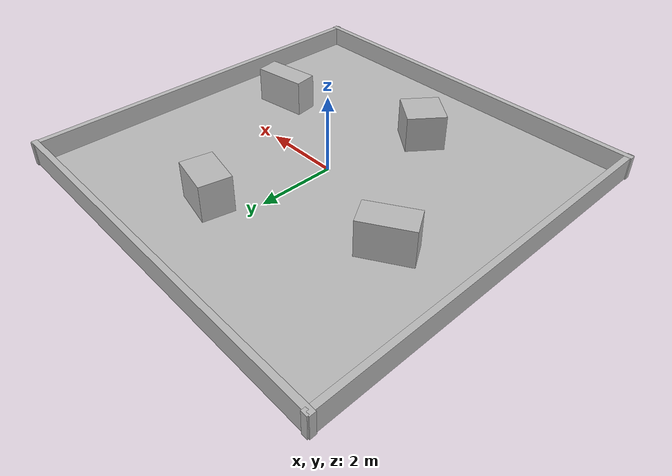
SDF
<?xml version="1.0"?>
<sdf version="1.9">
  <world name="pursuit_shifted">
    <physics name="1ms" type="ignored"><max_step_size>0.003</max_step_size><real_time_factor>1.0</real_time_factor></physics>
    <plugin filename="gz-sim-physics-system" name="gz::sim::systems::Physics"/>
    <plugin filename="gz-sim-user-commands-system" name="gz::sim::systems::UserCommands"/>
    <plugin filename="gz-sim-scene-broadcaster-system" name="gz::sim::systems::SceneBroadcaster"/>
    <plugin filename="gz-sim-sensors-system" name="gz::sim::systems::Sensors"><render_engine>ogre2</render_engine></plugin>
    <light type="directional" name="sun"><pose>0 0 10 0 0 0</pose><diffuse>0.8 0.8 0.8 1</diffuse><specular>0.2 0.2 0.2 1</specular><direction>-0.4 0.2 -1</direction></light>
    <model name="ground"><static>true</static><link name="link"><collision name="collision"><geometry><box><size>10 10 0.1</size></box></geometry></collision><visual name="visual"><geometry><box><size>10 10 0.1</size></box></geometry></visual></link></model>
    <model name="walls"><static>true</static><link name="link">
      <collision name="north"><pose>0 5 0.3 0 0 0</pose><geometry><box><size>10.2 0.15 0.6</size></box></geometry></collision><visual name="north_v"><pose>0 5 0.3 0 0 0</pose><geometry><box><size>10.2 0.15 0.6</size></box></geometry></visual>
      <collision name="south"><pose>0 -5 0.3 0 0 0</pose><geometry><box><size>10.2 0.15 0.6</size></box></geometry></collision><visual name="south_v"><pose>0 -5 0.3 0 0 0</pose><geometry><box><size>10.2 0.15 0.6</size></box></geometry></visual>
      <collision name="east"><pose>5 0 0.3 0 0 0</pose><geometry><box><size>0.15 10.2 0.6</size></box></geometry></collision><visual name="east_v"><pose>5 0 0.3 0 0 0</pose><geometry><box><size>0.15 10.2 0.6</size></box></geometry></visual>
      <collision name="west"><pose>-5 0 0.3 0 0 0</pose><geometry><box><size>0.15 10.2 0.6</size></box></geometry></collision><visual name="west_v"><pose>-5 0 0.3 0 0 0</pose><geometry><box><size>0.15 10.2 0.6</size></box></geometry></visual>
    </link></model>
    <model name="obstacles"><static>true</static><link name="link">
      <collision name="a"><pose>-3.0 1.1 0.5 0 0 0.55</pose><geometry><box><size>1.3 0.7 1</size></box></geometry></collision><visual name="av"><pose>-3.0 1.1 0.5 0 0 0.55</pose><geometry><box><size>1.3 0.7 1</size></box></geometry></visual>
      <collision name="b"><pose>0.8 2.9 0.5 0 0 -0.2</pose><geometry><box><size>1.1 0.8 1</size></box></geometry></collision><visual name="bv"><pose>0.8 2.9 0.5 0 0 -0.2</pose><geometry><box><size>1.1 0.8 1</size></box></geometry></visual>
      <collision name="c"><pose>-0.7 -2.6 0.5 0 0 -0.65</pose><geometry><box><size>1.0 1.0 1</size></box></geometry></collision><visual name="cv"><pose>-0.7 -2.6 0.5 0 0 -0.65</pose><geometry><box><size>1.0 1.0 1</size></box></geometry></visual>
      <collision name="d"><pose>3.1 -1.3 0.5 0 0 0.15</pose><geometry><box><size>1.4 0.6 1</size></box></geometry></collision><visual name="dv"><pose>3.1 -1.3 0.5 0 0 0.15</pose><geometry><box><size>1.4 0.6 1</size></box></geometry></visual>
    </link></model>
  </world>
</sdf>
